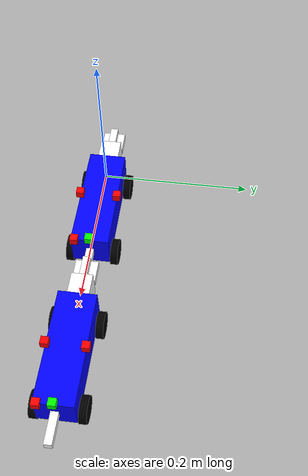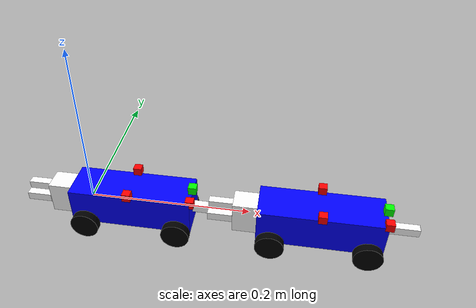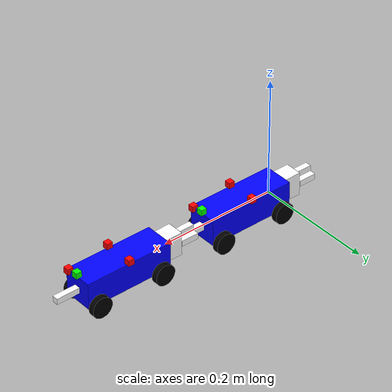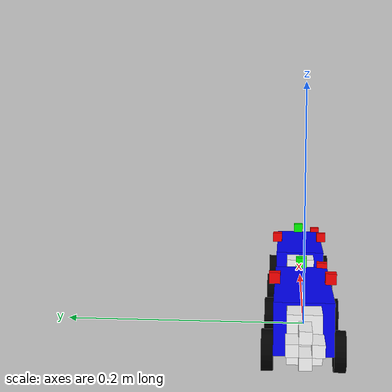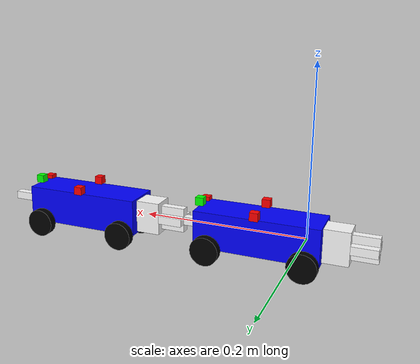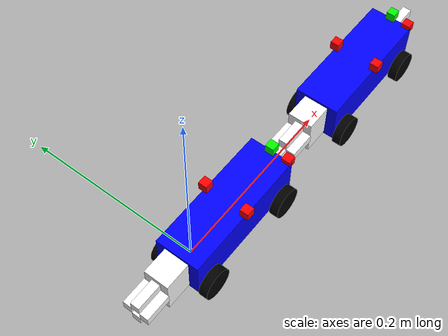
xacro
<?xml version="1.0"?>
<robot name="modular_robot" xmlns:xacro="http://www.ros.org/wiki/xacro">
    <!-- Correct include syntax -->
    <xacro:include filename="pipe_robot.xacro"/>

    <!-- Call pipe_robot with agent_namespace -->
    <xacro:pipe_robot namespace="agent_n" base_agent="agent_n" include_gazebo="true"/>
    <xacro:pipe_robot namespace="agent_n2" base_agent="agent_n" include_gazebo="true"/>

    <link name="agent_n_footprint" />

    <joint name="agent_n_footprint_joint" type="fixed">
        <parent link="agent_n_footprint"/>
        <child link="agent_n_female_link"/>
    </joint>

    <joint name="agent_n_agent_n2_joint" type="fixed">
        <origin xyz="${-(0.04*0.5) + 0.1} 0 0" rpy="0 0 0"/>
        <parent link="agent_n_male_link"/>
        <child link="agent_n2_female_link"/>
    </joint>

</robot>

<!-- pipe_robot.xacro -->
<robot name="pipe_robot" xmlns:xacro="http://www.ros.org/wiki/xacro">
    <xacro:macro name="pipe_robot" params="namespace base_agent include_gazebo">
        <xacro:property name="agent_namespace" value="${namespace}" />

        <!-- Include shared components -->
        <xacro:include filename="common.xacro"/>
        <xacro:include filename="mobile_base.xacro"/>
        <xacro:include filename="lidar.xacro"/>
        <xacro:include filename="tof.xacro"/>
        <xacro:include filename="camera.xacro"/>
        <xacro:include filename="linkage.xacro"/>
        <xacro:include filename="wheels.xacro"/>
        <xacro:if value="${include_gazebo}">
            <xacro:include filename="gazebo/pipe_robot.xacro"/>
        </xacro:if>
    </xacro:macro>
</robot>

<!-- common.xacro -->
<robot xmlns:xacro="http://www.ros.org/wiki/xacro">

    <xacro:macro name="box_inertial" params="m w l h xyz rpy">
        <inertial>
            <origin xyz="${xyz}" rpy="${rpy}"/>
            <mass value="${m}"/>
            <inertia
                ixx="${(m/12) * (h**2 + l**2)}"   ixy="0.0"   ixz="0.0"
                iyy="${(m/12) * (h**2 + w**2)}"   iyz="0.0"
                izz="${(m/12) * (w**2 + l**2)}"
            />
        </inertial>

    </xacro:macro>

    <xacro:macro name="cylinder_solid_inertial" params="m r l xyz rpy">
        <inertial>
            <origin xyz="${xyz}" rpy="${rpy}"/>
            <mass value="${m}"/>
            <inertia
                ixx="${(m/12) * (3*r**2 + l**2)}"   ixy="0.0"   ixz="0.0"
                iyy="${(m/12) * (3*r**2 + l**2)}"   iyz="0.0"
                izz="${(m/2) * r**2}"
            />
        </inertial>
    </xacro:macro>

</robot>

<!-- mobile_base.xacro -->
<robot name="mobile_base" xmlns:xacro="http://www.ros.org/wiki/xacro">

    <xacro:property name="base_m" value="1" />  <!-- mass /kg -->
    <xacro:property name="base_w" value="0.15" />  <!-- width /m -->
    <xacro:property name="base_l" value="0.05" />  <!-- length /m -->
    <xacro:property name="base_h" value="0.045" />  <!-- height /m -->

    <!-- LINKS -->
    <link name="${agent_namespace}_footprint_link" />

    <link name="${agent_namespace}_base_link">
        <visual>
            <origin xyz="0.0 0.0 0.0" rpy="0.0 0.0 0.0"/>
            <geometry>
                <box size="${base_w} ${base_l} ${base_h}"/>
            </geometry>
            <material name="blue">
                <color rgba="0 0 1 1"/>
            </material>
        </visual>

        <collision>
            <geometry>
                <box size="${base_w} ${base_l} ${base_h}"/>
            </geometry>
        </collision>

        <xacro:box_inertial m="${base_m}" w="${base_w}" l="${base_l}" h="${base_h}" xyz="0 0 0 " rpy="0 0 0"/>
    </link>

    <!-- JOINTS -->

</robot>

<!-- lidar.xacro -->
<robot name="lidar" xmlns:xacro="http://www.ros.org/wiki/xacro">

    <xacro:property name="lidar_m" value="0.001" />  <!-- mass /kg -->
    <xacro:property name="lidar_w" value="0.01" />  <!-- width /m -->
    <xacro:property name="lidar_l" value="0.01" />  <!-- length /m -->
    <xacro:property name="lidar_h" value="0.01" />  <!-- height /m -->

    <!-- LINKS -->
    <link name="${agent_namespace}_lidar_link">
        <visual>
            <origin xyz="0.0 0.0 0.0" rpy="0.0 0.0 0.0"/>
            <geometry>
                <box size="${lidar_w} ${lidar_l} ${lidar_h}"/>
            </geometry>
            <material name="red">
                <color rgba="1 0 0 1"/>
            </material>
        </visual>

        <collision>
            <geometry>
                <box size="${lidar_w} ${lidar_l} ${lidar_h}"/>
            </geometry>
        </collision>

        <xacro:box_inertial m="${lidar_m}" w="${lidar_w}" l="${lidar_l}" h="${lidar_h}" xyz="0 0 0 " rpy="0 0 0"/>
    </link>

    <!-- JOINTS -->
    <joint name="${agent_namespace}_base_lidar_joint" type="fixed">
        <origin xyz="${(base_w*0.5)} ${-(base_l*0.5 - lidar_l*0.5)} ${(base_h*0.5)}" rpy="${pi/2} 0 0"/>
        <parent link="${agent_namespace}_base_link"/>
        <child link="${agent_namespace}_lidar_link"/>
    </joint>

</robot>

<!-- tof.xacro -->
<robot name="tof" xmlns:xacro="http://www.ros.org/wiki/xacro">

    <xacro:property name="tof_m" value="0.001" />  <!-- mass /kg -->
    <xacro:property name="tof_w" value="0.01" />  <!-- width /m -->
    <xacro:property name="tof_l" value="0.01" />  <!-- length /m -->
    <xacro:property name="tof_h" value="0.01" />  <!-- height /m -->

    <!-- LINKS -->
    <link name="${agent_namespace}_right_tof_link">
        <visual>
            <origin xyz="0.0 0.0 0.0" rpy="0.0 0.0 0.0"/>
            <geometry>
                <box size="${tof_w} ${tof_l} ${tof_h}"/>
            </geometry>
            <material name="red">
                <color rgba="1 0 0 1"/>
            </material>
        </visual>

        <collision>
            <geometry>
                <box size="${tof_w} ${tof_l} ${tof_h}"/>
            </geometry>
        </collision>

        <xacro:box_inertial m="${tof_m}" w="${tof_w}" l="${tof_l}" h="${tof_h}" xyz="0 0 0 " rpy="0 0 0"/>
    </link>

    <link name="${agent_namespace}_left_tof_link">
        <visual>
            <origin xyz="0.0 0.0 0.0" rpy="0.0 0.0 0.0"/>
            <geometry>
                <box size="${tof_w} ${tof_l} ${tof_h}"/>
            </geometry>
            <material name="red">
                <color rgba="1 0 0 1"/>
            </material>
        </visual>

        <collision>
            <geometry>
                <box size="${tof_w} ${tof_l} ${tof_h}"/>
            </geometry>
        </collision>

        <xacro:box_inertial m="${tof_m}" w="${tof_w}" l="${tof_l}" h="${tof_h}" xyz="0 0 0 " rpy="0 0 0"/>
    </link>

    <!-- JOINTS -->
    <joint name="${agent_namespace}_base_right_tof_joint" type="fixed">
        <origin xyz="0 ${-(base_l*0.5)} ${(base_h*0.5)+(tof_h*0.5)}" rpy="0 0 ${-pi/2}"/>
        <parent link="${agent_namespace}_base_link"/>
        <child link="${agent_namespace}_right_tof_link"/>
    </joint>

    <joint name="${agent_namespace}_base_left_tof_joint" type="fixed">
        <origin xyz="0 ${(base_l*0.5)} ${(base_h*0.5)+(tof_h*0.5)}" rpy="0 0 ${pi/2}"/>
        <parent link="${agent_namespace}_base_link"/>
        <child link="${agent_namespace}_left_tof_link"/>
    </joint>

</robot>

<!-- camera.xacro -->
<robot name="camera" xmlns:xacro="http://www.ros.org/wiki/xacro">

    <xacro:property name="camera_m" value="0.001" />  <!-- mass /kg -->
    <xacro:property name="camera_w" value="0.01" />  <!-- width /m -->
    <xacro:property name="camera_l" value="0.01" />  <!-- length /m -->
    <xacro:property name="camera_h" value="0.01" />  <!-- height /m -->

    <!-- LINKS -->
    <link name="${agent_namespace}_camera_link">
        <visual>
            <origin xyz="0.0 0.0 0.0" rpy="0.0 0.0 0.0"/>
            <geometry>
                <box size="${camera_w} ${camera_l} ${camera_h}"/>
            </geometry>
            <material name="green">
                <color rgba="0 1 0 1"/>
            </material>
        </visual>

        <collision>
            <geometry>
                <box size="${camera_w} ${camera_l} ${camera_h}"/>
            </geometry>
        </collision>

        <xacro:box_inertial m="${camera_m}" w="${camera_w}" l="${camera_l}" h="${camera_h}" xyz="0 0 0 " rpy="0 0 0"/>
    </link>

    <!-- JOINTS -->
    <joint name="${agent_namespace}_base_camera_joint" type="fixed">
        <origin xyz="${(base_w*0.5)} 0 ${(base_h*0.5)+(camera_w*0.5)}" rpy="0 0 0"/>
        <parent link="${agent_namespace}_base_link"/>
        <child link="${agent_namespace}_camera_link"/>
    </joint>

</robot>

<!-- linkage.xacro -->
<robot name="linkage" xmlns:xacro="http://www.ros.org/wiki/xacro">

    <xacro:property name="male_m" value="0.1" />  <!-- mass /kg -->
    <xacro:property name="male_w" value="0.04" />  <!-- width /m -->
    <xacro:property name="male_h" value="0.01" />  <!-- height /m -->
    <xacro:property name="male_l" value="0.01" />  <!-- length /m -->

    <xacro:property name="female_diameter" value="0.04" />
    <xacro:property name="female_stopper_width" value="0.05" />
    <xacro:property name="female_hole_depth" value="0.03" />
    <xacro:property name="female_wall_thickness" value="0.01" />
    <xacro:property name="female_hole_thickness" value="0.01" />

    <xacro:property name="female_m" value="0.1" />  <!-- mass /kg -->
    <xacro:property name="female_w" value="${(female_diameter/2) + female_stopper_width + female_hole_depth}" />  <!-- width /m -->
    <xacro:property name="female_h" value="${female_diameter}" />  <!-- height /m -->
    <xacro:property name="female_l" value="0.028" />

    <xacro:macro name="female_rotation_shape">
            <origin xyz="0 0 0" rpy="${pi/2} 0 0"/>
            <geometry>
                <cylinder radius="${female_diameter/2}" length="${female_l}"/>
            </geometry>
    </xacro:macro>
    <xacro:macro name="female_stopper_shape">
            <origin xyz="${-female_stopper_width/2} 0 0" rpy="0 0 0"/>
            <geometry>
                <box size="${female_stopper_width} ${female_l} ${female_diameter}"/>
            </geometry>
    </xacro:macro>
    <xacro:macro name="female_wall_shape" params="y_offset z_offset">
            <origin xyz="${-(female_stopper_width + female_hole_depth/2)}
                        ${y_offset * (female_wall_thickness/2 + female_hole_thickness/2)}
                        ${z_offset * (female_wall_thickness/2 + female_hole_thickness/2)}"
                        rpy="0 0 0"/>
            <geometry>
                <box size="${female_hole_depth} ${female_wall_thickness} ${female_wall_thickness}"/>
            </geometry>
    </xacro:macro>

    <!-- LINKS -->
    <link name="${agent_namespace}_male_link">
        <visual>
            <origin xyz="0.0 0.0 0.0" rpy="0.0 0.0 0.0"/>
            <geometry>
                <box size="${male_w} ${male_l} ${male_h}"/>
            </geometry>
            <material name="base">
                <color rgba="1.0 1.0 1.0 1.0"/>
            </material>
        </visual>

        <collision>
            <origin xyz="0.0 0.0 0.0" rpy="0.0 0.0 0.0"/>
            <geometry>
                <box size="${male_w} ${male_l} ${male_h}"/>
            </geometry>
        </collision>

        <xacro:box_inertial m="${male_m}" w="${male_w}" l="${male_l}" h="${male_h}" xyz="0 0 0 " rpy="0 0 0"/>
    </link>

    <link name="${agent_namespace}_female_link">
        <visual>
            <xacro:female_rotation_shape />
            <material name="base">
                <color rgba="1.0 1.0 1.0 1.0"/>
            </material>
        </visual>
        <visual>
            <xacro:female_stopper_shape />
            <material name="base">
                <color rgba="1.0 1.0 1.0 1.0"/>
            </material>
        </visual>
        <visual>
            <xacro:female_wall_shape y_offset="0" z_offset="1"/>
            <material name="base">
                <color rgba="1.0 1.0 1.0 1.0"/>
            </material>
        </visual>
        <visual>
            <xacro:female_wall_shape y_offset="1" z_offset="0"/>
            <material name="base">
                <color rgba="1.0 1.0 1.0 1.0"/>
            </material>
        </visual>
        <visual>
            <xacro:female_wall_shape y_offset="-1" z_offset="0"/>
            <material name="base">
                <color rgba="1.0 1.0 1.0 1.0"/>
            </material>
        </visual>
        <visual>
            <xacro:female_wall_shape y_offset="0" z_offset="-1"/>
            <material name="base">
                <color rgba="1.0 1.0 1.0 1.0"/>
            </material>
        </visual>

        <collision>
            <xacro:female_rotation_shape />
        </collision>
        <collision>
            <xacro:female_stopper_shape />
        </collision>
        <collision>
            <xacro:female_wall_shape y_offset="0" z_offset="1"/>
        </collision>
        <collision>
            <xacro:female_wall_shape y_offset="0" z_offset="-1"/>
        </collision>
        <collision>
            <xacro:female_wall_shape y_offset="1" z_offset="0"/>
        </collision>
        <collision>
            <xacro:female_wall_shape y_offset="-1" z_offset="0"/>
        </collision>

        <xacro:box_inertial m="${female_m}" w="${female_w}" l="${female_l}" h="${female_h}" xyz="${female_diameter/2 - female_w/2} 0 0 " rpy="0 0 0"/>
    </link>

    <!-- JOINTS -->
    <joint name="${agent_namespace}_base_male_joint" type="fixed">
        <origin xyz="${(base_w*0.5) + (male_w*0.5)} 0 0" rpy="0 0 0"/>
        <parent link="${agent_namespace}_base_link"/>
        <child link="${agent_namespace}_male_link"/>
    </joint>

    <joint name="${agent_namespace}_female_footprint_joint" type="fixed">
        <origin xyz="0 0 0" rpy="0 0 0"/>
        <parent link="${agent_namespace}_female_link"/>
        <child link="${agent_namespace}_footprint_link"/>
    </joint>

    <joint name="${agent_namespace}_footprint_base_joint" type="fixed">
        <origin xyz="${(base_w*0.5) - female_diameter/2} 0 0" rpy="0 0 0"/>
        <parent link="${agent_namespace}_footprint_link"/>
        <child link="${agent_namespace}_base_link"/>
    </joint>

</robot>

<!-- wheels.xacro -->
<robot name="wheels" xmlns:xacro="http://www.ros.org/wiki/xacro">

    <xacro:property name="wheel_m" value="0.1" />  <!-- mass /kg -->
    <xacro:property name="wheel_r" value="0.0175" />  <!-- radius /m -->
    <xacro:property name="wheel_l" value="0.01" />  <!-- length /m -->

    <xacro:macro name="wheel_link" params="prefix">
        <link name="${agent_namespace}_wheel_${prefix}_link">
            <visual>
                <origin xyz="0.0 0.0 0.0" rpy="0 0.0 0.0"/>
                <geometry>
                    <cylinder radius="${wheel_r}" length="${wheel_l}"/>
                </geometry>
                <material name="wheel">
                    <color rgba="0 0 0 1.0"/>
                </material>
            </visual>

            <collision>
                <origin xyz="0.0 0.0 0.0" rpy="0 0.0 0.0"/>
                <geometry>
                    <cylinder radius="${wheel_r}" length="${wheel_l}"/>
                </geometry>
            </collision>

            <xacro:cylinder_solid_inertial m="${wheel_m}" r="${wheel_r}" l="${wheel_l}" xyz="0 0 0 " rpy="0 0 0"/>
        </link>
    </xacro:macro>

    <!-- LINKS -->
    <xacro:wheel_link prefix="front_right" />
    <xacro:wheel_link prefix="front_left" />
    <xacro:wheel_link prefix="back_right" />
    <xacro:wheel_link prefix="back_left" />

    <!-- JOINTS -->
    <joint name="${agent_namespace}_base_wheel_front_right_joint" type="continuous">
        <origin xyz="${(base_w)/2 - wheel_r} ${-((base_l/2) + (wheel_l/2))} ${-base_h/2}" rpy="${-pi/2} 0 0"/>
        <parent link="${agent_namespace}_base_link"/>
        <child link="${agent_namespace}_wheel_front_right_link"/>
        <axis xyz="0 0 1"/>
    </joint>

    <joint name="${agent_namespace}_base_wheel_front_left_joint" type="continuous">
        <origin xyz="${(base_w)/2 - wheel_r} ${(base_l/2) + (wheel_l/2)} ${-base_h/2}" rpy="${-pi/2} 0 0"/>
        <parent link="${agent_namespace}_base_link"/>
        <child link="${agent_namespace}_wheel_front_left_link"/>
        <axis xyz="0 0 1"/>
    </joint>

    <joint name="${agent_namespace}_base_wheel_back_right_joint" type="continuous">
        <origin xyz="${-((base_w)/2 - wheel_r)} ${-((base_l/2) + (wheel_l/2))} ${-base_h/2}" rpy="${-pi/2} 0 0"/>
        <parent link="${agent_namespace}_base_link"/>
        <child link="${agent_namespace}_wheel_back_right_link"/>
        <axis xyz="0 0 1"/>
    </joint>

    <joint name="${agent_namespace}_base_wheel_back_left_joint" type="continuous">
        <origin xyz="${-((base_w)/2 - wheel_r)} ${(base_l/2) + (wheel_l/2)} ${-base_h/2}" rpy="${-pi/2} 0 0"/>
        <parent link="${agent_namespace}_base_link"/>
        <child link="${agent_namespace}_wheel_back_left_link"/>
        <axis xyz="0 0 1"/>
    </joint>

</robot>
